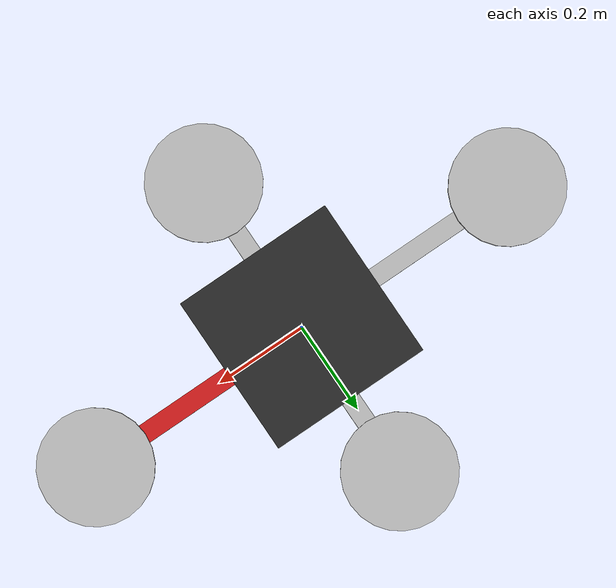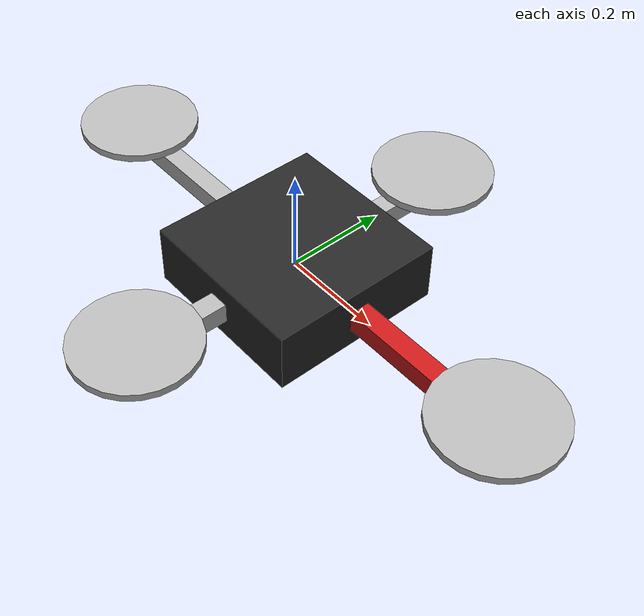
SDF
<?xml version="1.0" ?>
<sdf version="1.6">

  <model name="corridor_drone">

    <static>false</static>

    <link name="base_link">

      <!-- Keep it floating for this sensor test -->
      <gravity>false</gravity>

      <inertial>
        <mass>1.5</mass>
        <inertia>
          <ixx>0.03</ixx>
          <iyy>0.03</iyy>
          <izz>0.05</izz>
          <ixy>0</ixy>
          <ixz>0</ixz>
          <iyz>0</iyz>
        </inertia>
      </inertial>

      <!-- Physical body -->
      <collision name="body_collision">
        <geometry>
          <box>
            <size>0.35 0.35 0.12</size>
          </box>
        </geometry>
      </collision>

      <visual name="body_visual">
        <geometry>
          <box>
            <size>0.35 0.35 0.12</size>
          </box>
        </geometry>

        <material>
          <ambient>0.15 0.15 0.15 1</ambient>
          <diffuse>0.15 0.15 0.15 1</diffuse>
        </material>
      </visual>

      <!-- Forward arm: RED so you can see aircraft heading -->
      <visual name="front_arm">
        <pose>0.25 0 0 0 0 0</pose>

        <geometry>
          <box>
            <size>0.5 0.04 0.04</size>
          </box>
        </geometry>

        <material>
          <ambient>0.8 0.1 0.1 1</ambient>
          <diffuse>0.8 0.1 0.1 1</diffuse>
        </material>
      </visual>

      <!-- Rear arm -->
      <visual name="rear_arm">
        <pose>-0.25 0 0 0 0 0</pose>

        <geometry>
          <box>
            <size>0.5 0.04 0.04</size>
          </box>
        </geometry>
      </visual>

      <!-- Left/right arm -->
      <visual name="side_arm">
        <geometry>
          <box>
            <size>0.04 0.70 0.04</size>
          </box>
        </geometry>
      </visual>

      <!-- Four rotors -->

      <visual name="rotor_front">
        <pose>0.50 0 0.03 0 0 0</pose>
        <geometry>
          <cylinder>
            <radius>0.12</radius>
            <length>0.015</length>
          </cylinder>
        </geometry>
      </visual>

      <visual name="rotor_back">
        <pose>-0.50 0 0.03 0 0 0</pose>
        <geometry>
          <cylinder>
            <radius>0.12</radius>
            <length>0.015</length>
          </cylinder>
        </geometry>
      </visual>

      <visual name="rotor_left">
        <pose>0 0.35 0.03 0 0 0</pose>
        <geometry>
          <cylinder>
            <radius>0.12</radius>
            <length>0.015</length>
          </cylinder>
        </geometry>
      </visual>

      <visual name="rotor_right">
        <pose>0 -0.35 0.03 0 0 0</pose>
        <geometry>
          <cylinder>
            <radius>0.12</radius>
            <length>0.015</length>
          </cylinder>
        </geometry>
      </visual>

      <!-- 360 DEGREE 2D LIDAR -->

      <sensor name="lidar" type="ray">

        <pose>0 0 0.12 0 0 0</pose>

        <always_on>true</always_on>
        <visualize>true</visualize>
        <update_rate>10</update_rate>

        <ray>

          <scan>
            <horizontal>
              <samples>502</samples>
              <resolution>1</resolution>

              <min_angle>-3.14159265359</min_angle>
              <max_angle>3.14159265359</max_angle>
            </horizontal>
          </scan>

          <range>
            <min>0.02</min>
            <max>12.0</max>
            <resolution>0.004</resolution>
          </range>

        </ray>

        <plugin
          name="gazebo_ros_ray_sensor"
          filename="libgazebo_ros_ray_sensor.so">

          <ros>
            <namespace>/</namespace>
            <remapping>~/out:=scan</remapping>
          </ros>

          <output_type>sensor_msgs/LaserScan</output_type>

          <frame_name>base_laser</frame_name>

        </plugin>

      </sensor>

    </link>

  </model>

</sdf>
